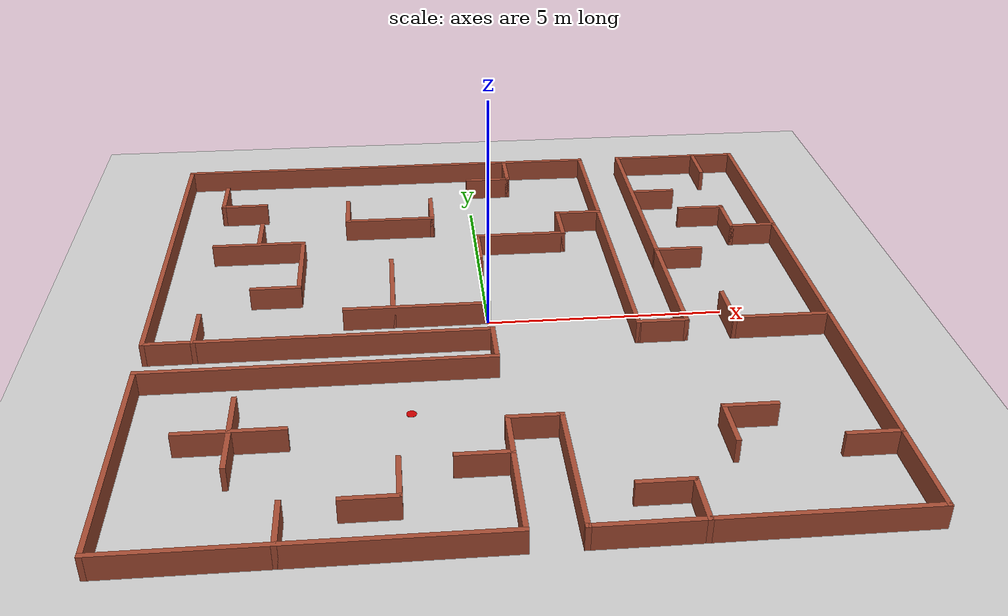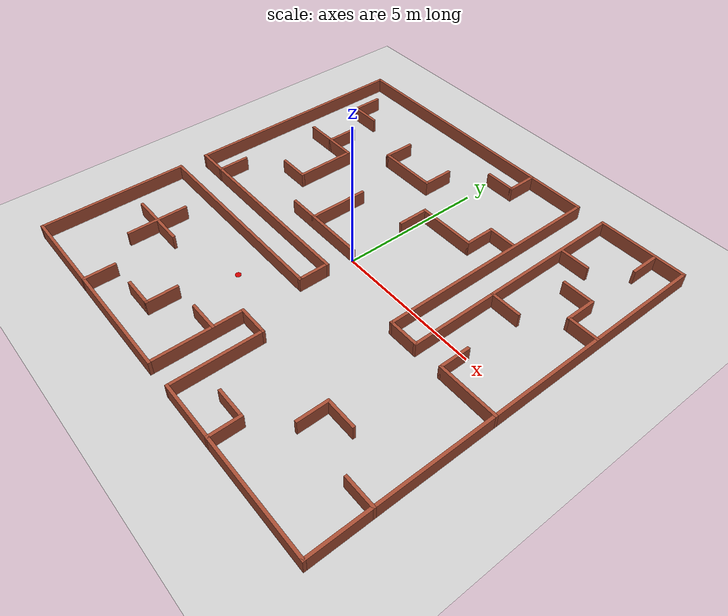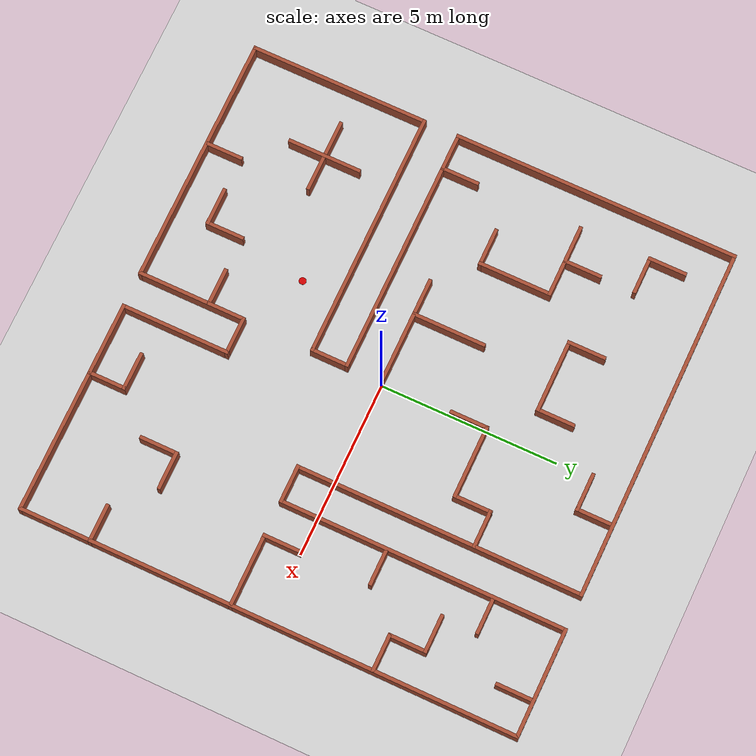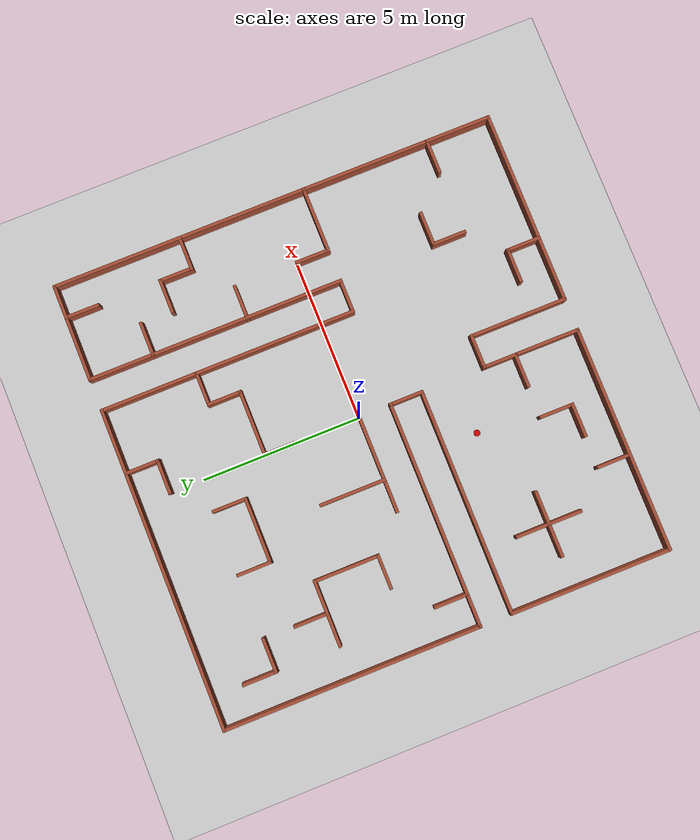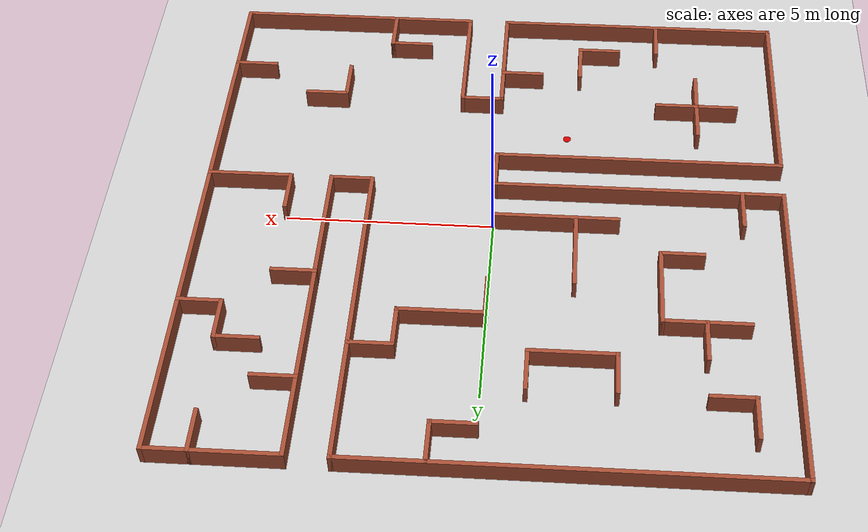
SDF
<sdf version="1.7">
 <world name="default">
  <light name="sun" type="directional">
   <pose>0 0 10 0 -0 0</pose>
   <diffuse>0.8 0.8 0.8 1</diffuse>
   <specular>0.2 0.2 0.2 1</specular>
   <attenuation>
    <range>1000</range>
    <constant>0.9</constant>
    <linear>0.01</linear>
    <quadratic>0.001</quadratic>
   </attenuation>
   <direction>-0.5 0.1 -0.9</direction>
   <spot><inner_angle>0</inner_angle><outer_angle>0</outer_angle><falloff>0</falloff></spot>
  </light>
  <model name="ground_plane">
   <static>1</static>
   <link name="link">
    <collision name="collision">
     <geometry><plane><normal>0 0 1</normal><size>100 100</size></plane></geometry>
     <surface>
      <contact><collide_bitmask>65535</collide_bitmask></contact>
      <friction><ode><mu>100</mu><mu2>50</mu2></ode></friction>
     </surface>
    </collision>
    <visual name="visual">
     <cast_shadows>0</cast_shadows>
     <geometry><plane><normal>0 0 1</normal><size>100 100</size></plane></geometry>
     <material>
      <script><uri>file://media/materials/scripts/gazebo.material</uri><name>Gazebo/Grey</name></script>
     </material>
    </visual>
   </link>
  </model>
  <gravity>0 0 -9.8</gravity>
  <magnetic_field>6e-06 2.3e-05 -4.2e-05</magnetic_field>
  <atmosphere type="adiabatic"/>
  <physics type="ode">
   <max_step_size>0.001</max_step_size>
   <real_time_factor>1</real_time_factor>
   <real_time_update_rate>1000</real_time_update_rate>
  </physics>
  <scene><ambient>0.4 0.4 0.4 1</ambient><background>0.7 0.7 0.7 1</background><shadows>1</shadows></scene>
  <spherical_coordinates>
   <surface_model>EARTH_WGS84</surface_model>
   <latitude_deg>0</latitude_deg>
   <longitude_deg>0</longitude_deg>
   <elevation>0</elevation>
   <heading_deg>0</heading_deg>
  </spherical_coordinates>
  <model name="sin_cpx_0">
   <link name="Wall_0">
    <collision name="Wall_0_Collision">
     <geometry><box><size>10.1 0.1 0.5</size></box></geometry>
     <pose>0 0 0.25 0 -0 0</pose>
    </collision>
    <visual name="Wall_0_Visual">
     <pose>0 0 0.25 0 -0 0</pose>
     <geometry><box><size>10.1 0.1 0.5</size></box></geometry>
     <material>
      <script><uri>file://media/materials/scripts/gazebo.material</uri><name>Gazebo/Bricks</name></script>
      <ambient>0.760784 0.662745 0.627451 1</ambient>
     </material>
     <meta><layer>0</layer></meta>
    </visual>
    <pose>-2 7 0 0 -0 0</pose>
   </link>
   <link name="Wall_1">
    <collision name="Wall_1_Collision">
     <geometry><box><size>8.1 0.1 0.5</size></box></geometry>
     <pose>0 0 0.25 0 -0 0</pose>
    </collision>
    <visual name="Wall_1_Visual">
     <pose>0 0 0.25 0 -0 0</pose>
     <geometry><box><size>8.1 0.1 0.5</size></box></geometry>
     <material>
      <script><uri>file://media/materials/scripts/gazebo.material</uri><name>Gazebo/Bricks</name></script>
      <ambient>0.760784 0.662745 0.627451 1</ambient>
     </material>
     <meta><layer>0</layer></meta>
    </visual>
    <pose>3 3 0 0 -0 -1.5708</pose>
   </link>
   <link name="Wall_10">
    <collision name="Wall_10_Collision">
     <geometry><box><size>7.1 0.1 0.5</size></box></geometry>
     <pose>0 0 0.25 0 -0 0</pose>
    </collision>
    <visual name="Wall_10_Visual">
     <pose>0 0 0.25 0 -0 0</pose>
     <geometry><box><size>7.1 0.1 0.5</size></box></geometry>
     <material>
      <script><uri>file://media/materials/scripts/gazebo.material</uri><name>Gazebo/Bricks</name></script>
      <ambient>0.760784 0.662745 0.627451 1</ambient>
     </material>
     <meta><layer>0</layer></meta>
    </visual>
    <pose>-3.5 -7 0 0 -0 3.14159</pose>
   </link>
   <link name="Wall_11">
    <collision name="Wall_11_Collision">
     <geometry><box><size>5.1 0.1 0.5</size></box></geometry>
     <pose>0 0 0.25 0 -0 0</pose>
    </collision>
    <visual name="Wall_11_Visual">
     <pose>0 0 0.25 0 -0 0</pose>
     <geometry><box><size>5.1 0.1 0.5</size></box></geometry>
     <material>
      <script><uri>file://media/materials/scripts/gazebo.material</uri><name>Gazebo/Bricks</name></script>
      <ambient>0.760784 0.662745 0.627451 1</ambient>
     </material>
     <meta><layer>0</layer></meta>
    </visual>
    <pose>-7 -4.5 0 0 -0 1.5708</pose>
   </link>
   <link name="Wall_12">
    <collision name="Wall_12_Collision">
     <geometry><box><size>7.1 0.1 0.5</size></box></geometry>
     <pose>0 0 0.25 0 -0 0</pose>
    </collision>
    <visual name="Wall_12_Visual">
     <pose>0 0 0.25 0 -0 0</pose>
     <geometry><box><size>7.1 0.1 0.5</size></box></geometry>
     <material>
      <script><uri>file://media/materials/scripts/gazebo.material</uri><name>Gazebo/Bricks</name></script>
      <ambient>0.760784 0.662745 0.627451 1</ambient>
     </material>
     <meta><layer>0</layer></meta>
    </visual>
    <pose>-3.5 -2 0 0 -0 0</pose>
   </link>
   <link name="Wall_13">
    <collision name="Wall_13_Collision">
     <geometry><box><size>1.1 0.1 0.5</size></box></geometry>
     <pose>0 0 0.25 0 -0 0</pose>
    </collision>
    <visual name="Wall_13_Visual">
     <pose>0 0 0.25 0 -0 0</pose>
     <geometry><box><size>1.1 0.1 0.5</size></box></geometry>
     <material>
      <script><uri>file://media/materials/scripts/gazebo.material</uri><name>Gazebo/Bricks</name></script>
      <ambient>0.760784 0.662745 0.627451 1</ambient>
     </material>
     <meta><layer>0</layer></meta>
    </visual>
    <pose>0 -1.5 0 0 -0 1.5708</pose>
   </link>
   <link name="Wall_14">
    <collision name="Wall_14_Collision">
     <geometry><box><size>7.1 0.1 0.5</size></box></geometry>
     <pose>0 0 0.25 0 -0 0</pose>
    </collision>
    <visual name="Wall_14_Visual">
     <pose>0 0 0.25 0 -0 0</pose>
     <geometry><box><size>7.1 0.1 0.5</size></box></geometry>
     <material>
      <script><uri>file://media/materials/scripts/gazebo.material</uri><name>Gazebo/Bricks</name></script>
      <ambient>0.760784 0.662745 0.627451 1</ambient>
     </material>
     <meta><layer>0</layer></meta>
    </visual>
    <pose>-3.5 -1 0 0 -0 3.14159</pose>
   </link>
   <link name="Wall_15">
    <collision name="Wall_15_Collision">
     <geometry><box><size>8.1 0.1 0.5</size></box></geometry>
     <pose>0 0 0.25 0 -0 0</pose>
    </collision>
    <visual name="Wall_15_Visual">
     <pose>0 0 0.25 0 -0 0</pose>
     <geometry><box><size>8.1 0.1 0.5</size></box></geometry>
     <material>
      <script><uri>file://media/materials/scripts/gazebo.material</uri><name>Gazebo/Bricks</name></script>
      <ambient>0.760784 0.662745 0.627451 1</ambient>
     </material>
     <meta><layer>0</layer></meta>
    </visual>
    <pose>-7 3 0 0 -0 1.5708</pose>
   </link>
   <link name="Wall_17">
    <collision name="Wall_17_Collision">
     <geometry><box><size>1.1 0.1 0.5</size></box></geometry>
     <pose>0 0 0.25 0 -0 0</pose>
    </collision>
    <visual name="Wall_17_Visual">
     <pose>0 0 0.25 0 -0 0</pose>
     <geometry><box><size>1.1 0.1 0.5</size></box></geometry>
     <material>
      <script><uri>file://media/materials/scripts/gazebo.material</uri><name>Gazebo/Bricks</name></script>
      <ambient>0.760784 0.662745 0.627451 1</ambient>
     </material>
     <meta><layer>0</layer></meta>
    </visual>
    <pose>-4 -6.5 0 0 -0 1.5708</pose>
   </link>
   <link name="Wall_19">
    <collision name="Wall_19_Collision">
     <geometry><box><size>2.1 0.1 0.5</size></box></geometry>
     <pose>0 0 0.25 0 -0 0</pose>
    </collision>
    <visual name="Wall_19_Visual">
     <pose>0 0 0.25 0 -0 0</pose>
     <geometry><box><size>2.1 0.1 0.5</size></box></geometry>
     <material>
      <script><uri>file://media/materials/scripts/gazebo.material</uri><name>Gazebo/Bricks</name></script>
      <ambient>0.760784 0.662745 0.627451 1</ambient>
     </material>
     <meta><layer>0</layer></meta>
    </visual>
    <pose>-5 -4 0 0 -0 0</pose>
   </link>
   <link name="Wall_2">
    <collision name="Wall_2_Collision">
     <geometry><box><size>1.1 0.1 0.5</size></box></geometry>
     <pose>0 0 0.25 0 -0 0</pose>
    </collision>
    <visual name="Wall_2_Visual">
     <pose>0 0 0.25 0 -0 0</pose>
     <geometry><box><size>1.1 0.1 0.5</size></box></geometry>
     <material>
      <script><uri>file://media/materials/scripts/gazebo.material</uri><name>Gazebo/Bricks</name></script>
      <ambient>0.760784 0.662745 0.627451 1</ambient>
     </material>
     <meta><layer>0</layer></meta>
    </visual>
    <pose>3.5 -1 0 0 -0 0</pose>
   </link>
   <link name="Wall_21">
    <collision name="Wall_21_Collision">
     <geometry><box><size>2.1 0.1 0.5</size></box></geometry>
     <pose>0 0 0.25 0 -0 0</pose>
    </collision>
    <visual name="Wall_21_Visual">
     <pose>0 0 0.25 0 -0 0</pose>
     <geometry><box><size>2.1 0.1 0.5</size></box></geometry>
     <material>
      <script><uri>file://media/materials/scripts/gazebo.material</uri><name>Gazebo/Bricks</name></script>
      <ambient>0.760784 0.662745 0.627451 1</ambient>
     </material>
     <meta><layer>0</layer></meta>
    </visual>
    <pose>-5 -4 0 0 -0 -1.5708</pose>
   </link>
   <link name="Wall_23">
    <collision name="Wall_23_Collision">
     <geometry><box><size>1.1 0.1 0.5</size></box></geometry>
     <pose>0 0 0.25 0 -0 0</pose>
    </collision>
    <visual name="Wall_23_Visual">
     <pose>0 0 0.25 0 -0 0</pose>
     <geometry><box><size>1.1 0.1 0.5</size></box></geometry>
     <material>
      <script><uri>file://media/materials/scripts/gazebo.material</uri><name>Gazebo/Bricks</name></script>
      <ambient>0.760784 0.662745 0.627451 1</ambient>
     </material>
     <meta><layer>0</layer></meta>
    </visual>
    <pose>-2.5 -6 0 0 -0 0</pose>
   </link>
   <link name="Wall_24">
    <collision name="Wall_24_Collision">
     <geometry><box><size>1.1 0.1 0.5</size></box></geometry>
     <pose>0 0 0.25 0 -0 0</pose>
    </collision>
    <visual name="Wall_24_Visual">
     <pose>0 0 0.25 0 -0 0</pose>
     <geometry><box><size>1.1 0.1 0.5</size></box></geometry>
     <material>
      <script><uri>file://media/materials/scripts/gazebo.material</uri><name>Gazebo/Bricks</name></script>
      <ambient>0.760784 0.662745 0.627451 1</ambient>
     </material>
     <meta><layer>0</layer></meta>
    </visual>
    <pose>-2 -5.5 0 0 -0 1.5708</pose>
   </link>
   <link name="Wall_26">
    <collision name="Wall_26_Collision">
     <geometry><box><size>1.1 0.1 0.5</size></box></geometry>
     <pose>0 0 0.25 0 -0 0</pose>
    </collision>
    <visual name="Wall_26_Visual">
     <pose>0 0 0.25 0 -0 0</pose>
     <geometry><box><size>1.1 0.1 0.5</size></box></geometry>
     <material>
      <script><uri>file://media/materials/scripts/gazebo.material</uri><name>Gazebo/Bricks</name></script>
      <ambient>0.760784 0.662745 0.627451 1</ambient>
     </material>
     <meta><layer>0</layer></meta>
    </visual>
    <pose>2.5 -6 0 0 -0 0</pose>
   </link>
   <link name="Wall_27">
    <collision name="Wall_27_Collision">
     <geometry><box><size>1.1 0.1 0.5</size></box></geometry>
     <pose>0 0 0.25 0 -0 0</pose>
    </collision>
    <visual name="Wall_27_Visual">
     <pose>0 0 0.25 0 -0 0</pose>
     <geometry><box><size>1.1 0.1 0.5</size></box></geometry>
     <material>
      <script><uri>file://media/materials/scripts/gazebo.material</uri><name>Gazebo/Bricks</name></script>
      <ambient>0.760784 0.662745 0.627451 1</ambient>
     </material>
     <meta><layer>0</layer></meta>
    </visual>
    <pose>3 -6.5 0 0 -0 -1.5708</pose>
   </link>
   <link name="Wall_3">
    <collision name="Wall_3_Collision">
     <geometry><box><size>8.1 0.1 0.5</size></box></geometry>
     <pose>0 0 0.25 0 -0 0</pose>
    </collision>
    <visual name="Wall_3_Visual">
     <pose>0 0 0.25 0 -0 0</pose>
     <geometry><box><size>8.1 0.1 0.5</size></box></geometry>
     <material>
      <script><uri>file://media/materials/scripts/gazebo.material</uri><name>Gazebo/Bricks</name></script>
      <ambient>0.760784 0.662745 0.627451 1</ambient>
     </material>
     <meta><layer>0</layer></meta>
    </visual>
    <pose>4 3 0 0 -0 1.5708</pose>
   </link>
   <link name="Wall_30">
    <collision name="Wall_30_Collision">
     <geometry><box><size>1.1 0.1 0.5</size></box></geometry>
     <pose>0 0 0.25 0 -0 0</pose>
    </collision>
    <visual name="Wall_30_Visual">
     <pose>0 0 0.25 0 -0 0</pose>
     <geometry><box><size>1.1 0.1 0.5</size></box></geometry>
     <material>
      <script><uri>file://media/materials/scripts/gazebo.material</uri><name>Gazebo/Bricks</name></script>
      <ambient>0.760784 0.662745 0.627451 1</ambient>
     </material>
     <meta><layer>0</layer></meta>
    </visual>
    <pose>4 -4.5 0 0 -0 1.5708</pose>
   </link>
   <link name="Wall_31">
    <collision name="Wall_31_Collision">
     <geometry><box><size>1.1 0.1 0.5</size></box></geometry>
     <pose>0 0 0.25 0 -0 0</pose>
    </collision>
    <visual name="Wall_31_Visual">
     <pose>0 0 0.25 0 -0 0</pose>
     <geometry><box><size>1.1 0.1 0.5</size></box></geometry>
     <material>
      <script><uri>file://media/materials/scripts/gazebo.material</uri><name>Gazebo/Bricks</name></script>
      <ambient>0.760784 0.662745 0.627451 1</ambient>
     </material>
     <meta><layer>0</layer></meta>
    </visual>
    <pose>4.5 -4 0 0 -0 0</pose>
   </link>
   <link name="Wall_33">
    <collision name="Wall_33_Collision">
     <geometry><box><size>1.1 0.1 0.5</size></box></geometry>
     <pose>0 0 0.25 0 -0 0</pose>
    </collision>
    <visual name="Wall_33_Visual">
     <pose>0 0 0.25 0 -0 0</pose>
     <geometry><box><size>1.1 0.1 0.5</size></box></geometry>
     <material>
      <script><uri>file://media/materials/scripts/gazebo.material</uri><name>Gazebo/Bricks</name></script>
      <ambient>0.760784 0.662745 0.627451 1</ambient>
     </material>
     <meta><layer>0</layer></meta>
    </visual>
    <pose>6.5 -5 0 0 -0 0</pose>
   </link>
   <link name="Wall_35">
    <collision name="Wall_35_Collision">
     <geometry><box><size>1.1 0.1 0.5</size></box></geometry>
     <pose>0 0 0.25 0 -0 0</pose>
    </collision>
    <visual name="Wall_35_Visual">
     <pose>0 0 0.25 0 -0 0</pose>
     <geometry><box><size>1.1 0.1 0.5</size></box></geometry>
     <material>
      <script><uri>file://media/materials/scripts/gazebo.material</uri><name>Gazebo/Bricks</name></script>
      <ambient>0.760784 0.662745 0.627451 1</ambient>
     </material>
     <meta><layer>0</layer></meta>
    </visual>
    <pose>5 -0.5 0 0 -0 -1.5708</pose>
   </link>
   <link name="Wall_36">
    <collision name="Wall_36_Collision">
     <geometry><box><size>2.1 0.1 0.5</size></box></geometry>
     <pose>0 0 0.25 0 -0 0</pose>
    </collision>
    <visual name="Wall_36_Visual">
     <pose>0 0 0.25 0 -0 0</pose>
     <geometry><box><size>2.1 0.1 0.5</size></box></geometry>
     <material>
      <script><uri>file://media/materials/scripts/gazebo.material</uri><name>Gazebo/Bricks</name></script>
      <ambient>0.760784 0.662745 0.627451 1</ambient>
     </material>
     <meta><layer>0</layer></meta>
    </visual>
    <pose>6 -1 0 0 -0 0</pose>
   </link>
   <link name="Wall_38">
    <collision name="Wall_38_Collision">
     <geometry><box><size>1.1 0.1 0.5</size></box></geometry>
     <pose>0 0 0.25 0 -0 0</pose>
    </collision>
    <visual name="Wall_38_Visual">
     <pose>0 0 0.25 0 -0 0</pose>
     <geometry><box><size>1.1 0.1 0.5</size></box></geometry>
     <material>
      <script><uri>file://media/materials/scripts/gazebo.material</uri><name>Gazebo/Bricks</name></script>
      <ambient>0.760784 0.662745 0.627451 1</ambient>
     </material>
     <meta><layer>0</layer></meta>
    </visual>
    <pose>4.5 2 0 0 -0 0</pose>
   </link>
   <link name="Wall_4">
    <collision name="Wall_4_Collision">
     <geometry><box><size>3.1 0.1 0.5</size></box></geometry>
     <pose>0 0 0.25 0 -0 0</pose>
    </collision>
    <visual name="Wall_4_Visual">
     <pose>0 0 0.25 0 -0 0</pose>
     <geometry><box><size>3.1 0.1 0.5</size></box></geometry>
     <material>
      <script><uri>file://media/materials/scripts/gazebo.material</uri><name>Gazebo/Bricks</name></script>
      <ambient>0.760784 0.662745 0.627451 1</ambient>
     </material>
     <meta><layer>0</layer></meta>
    </visual>
    <pose>5.5 7 0 0 -0 0</pose>
   </link>
   <link name="Wall_40">
    <collision name="Wall_40_Collision">
     <geometry><box><size>1.1 0.1 0.5</size></box></geometry>
     <pose>0 0 0.25 0 -0 0</pose>
    </collision>
    <visual name="Wall_40_Visual">
     <pose>0 0 0.25 0 -0 0</pose>
     <geometry><box><size>1.1 0.1 0.5</size></box></geometry>
     <material>
      <script><uri>file://media/materials/scripts/gazebo.material</uri><name>Gazebo/Bricks</name></script>
      <ambient>0.760784 0.662745 0.627451 1</ambient>
     </material>
     <meta><layer>0</layer></meta>
    </visual>
    <pose>4.5 5 0 0 -0 0</pose>
   </link>
   <link name="Wall_42">
    <collision name="Wall_42_Collision">
     <geometry><box><size>1.1 0.1 0.5</size></box></geometry>
     <pose>0 0 0.25 0 -0 0</pose>
    </collision>
    <visual name="Wall_42_Visual">
     <pose>0 0 0.25 0 -0 0</pose>
     <geometry><box><size>1.1 0.1 0.5</size></box></geometry>
     <material>
      <script><uri>file://media/materials/scripts/gazebo.material</uri><name>Gazebo/Bricks</name></script>
      <ambient>0.760784 0.662745 0.627451 1</ambient>
     </material>
     <meta><layer>0</layer></meta>
    </visual>
    <pose>6 6.5 0 0 -0 -1.5708</pose>
   </link>
   <link name="Wall_44">
    <collision name="Wall_44_Collision">
     <geometry><box><size>1.1 0.1 0.5</size></box></geometry>
     <pose>0 0 0.25 0 -0 0</pose>
    </collision>
    <visual name="Wall_44_Visual">
     <pose>0 0 0.25 0 -0 0</pose>
     <geometry><box><size>1.1 0.1 0.5</size></box></geometry>
     <material>
      <script><uri>file://media/materials/scripts/gazebo.material</uri><name>Gazebo/Bricks</name></script>
      <ambient>0.760784 0.662745 0.627451 1</ambient>
     </material>
     <meta><layer>0</layer></meta>
    </visual>
    <pose>5.5 4 0 0 -0 0</pose>
   </link>
   <link name="Wall_45">
    <collision name="Wall_45_Collision">
     <geometry><box><size>1.1 0.1 0.5</size></box></geometry>
     <pose>0 0 0.25 0 -0 0</pose>
    </collision>
    <visual name="Wall_45_Visual">
     <pose>0 0 0.25 0 -0 0</pose>
     <geometry><box><size>1.1 0.1 0.5</size></box></geometry>
     <material>
      <script><uri>file://media/materials/scripts/gazebo.material</uri><name>Gazebo/Bricks</name></script>
      <ambient>0.760784 0.662745 0.627451 1</ambient>
     </material>
     <meta><layer>0</layer></meta>
    </visual>
    <pose>6 3.5 0 0 -0 -1.5708</pose>
   </link>
   <link name="Wall_46">
    <collision name="Wall_46_Collision">
     <geometry><box><size>1.1 0.1 0.5</size></box></geometry>
     <pose>0 0 0.25 0 -0 0</pose>
    </collision>
    <visual name="Wall_46_Visual">
     <pose>0 0 0.25 0 -0 0</pose>
     <geometry><box><size>1.1 0.1 0.5</size></box></geometry>
     <material>
      <script><uri>file://media/materials/scripts/gazebo.material</uri><name>Gazebo/Bricks</name></script>
      <ambient>0.760784 0.662745 0.627451 1</ambient>
     </material>
     <meta><layer>0</layer></meta>
    </visual>
    <pose>6.5 3 0 0 -0 0</pose>
   </link>
   <link name="Wall_48">
    <collision name="Wall_48_Collision">
     <geometry><box><size>1.1 0.1 0.5</size></box></geometry>
     <pose>0 0 0.25 0 -0 0</pose>
    </collision>
    <visual name="Wall_48_Visual">
     <pose>0 0 0.25 0 -0 0</pose>
     <geometry><box><size>1.1 0.1 0.5</size></box></geometry>
     <material>
      <script><uri>file://media/materials/scripts/gazebo.material</uri><name>Gazebo/Bricks</name></script>
      <ambient>0.760784 0.662745 0.627451 1</ambient>
     </material>
     <meta><layer>0</layer></meta>
    </visual>
    <pose>0 2.5 0 0 -0 1.5708</pose>
   </link>
   <link name="Wall_49">
    <collision name="Wall_49_Collision">
     <geometry><box><size>2.1 0.1 0.5</size></box></geometry>
     <pose>0 0 0.25 0 -0 0</pose>
    </collision>
    <visual name="Wall_49_Visual">
     <pose>0 0 0.25 0 -0 0</pose>
     <geometry><box><size>2.1 0.1 0.5</size></box></geometry>
     <material>
      <script><uri>file://media/materials/scripts/gazebo.material</uri><name>Gazebo/Bricks</name></script>
      <ambient>0.760784 0.662745 0.627451 1</ambient>
     </material>
     <meta><layer>0</layer></meta>
    </visual>
    <pose>1 3 0 0 -0 0</pose>
   </link>
   <link name="Wall_5">
    <collision name="Wall_5_Collision">
     <geometry><box><size>14.1 0.1 0.5</size></box></geometry>
     <pose>0 0 0.25 0 -0 0</pose>
    </collision>
    <visual name="Wall_5_Visual">
     <pose>0 0 0.25 0 -0 0</pose>
     <geometry><box><size>14.1 0.1 0.5</size></box></geometry>
     <material>
      <script><uri>file://media/materials/scripts/gazebo.material</uri><name>Gazebo/Bricks</name></script>
      <ambient>0.760784 0.662745 0.627451 1</ambient>
     </material>
     <meta><layer>0</layer></meta>
    </visual>
    <pose>7 0 0 0 -0 -1.5708</pose>
   </link>
   <link name="Wall_50">
    <collision name="Wall_50_Collision">
     <geometry><box><size>1.1 0.1 0.5</size></box></geometry>
     <pose>0 0 0.25 0 -0 0</pose>
    </collision>
    <visual name="Wall_50_Visual">
     <pose>0 0 0.25 0 -0 0</pose>
     <geometry><box><size>1.1 0.1 0.5</size></box></geometry>
     <material>
      <script><uri>file://media/materials/scripts/gazebo.material</uri><name>Gazebo/Bricks</name></script>
      <ambient>0.760784 0.662745 0.627451 1</ambient>
     </material>
     <meta><layer>0</layer></meta>
    </visual>
    <pose>2 3.5 0 0 -0 1.5708</pose>
   </link>
   <link name="Wall_51">
    <collision name="Wall_51_Collision">
     <geometry><box><size>1.1 0.1 0.5</size></box></geometry>
     <pose>0 0 0.25 0 -0 0</pose>
    </collision>
    <visual name="Wall_51_Visual">
     <pose>0 0 0.25 0 -0 0</pose>
     <geometry><box><size>1.1 0.1 0.5</size></box></geometry>
     <material>
      <script><uri>file://media/materials/scripts/gazebo.material</uri><name>Gazebo/Bricks</name></script>
      <ambient>0.760784 0.662745 0.627451 1</ambient>
     </material>
     <meta><layer>0</layer></meta>
    </visual>
    <pose>2.5 4 0 0 -0 0</pose>
   </link>
   <link name="Wall_53">
    <collision name="Wall_53_Collision">
     <geometry><box><size>1.1 0.1 0.5</size></box></geometry>
     <pose>0 0 0.25 0 -0 0</pose>
    </collision>
    <visual name="Wall_53_Visual">
     <pose>0 0 0.25 0 -0 0</pose>
     <geometry><box><size>1.1 0.1 0.5</size></box></geometry>
     <material>
      <script><uri>file://media/materials/scripts/gazebo.material</uri><name>Gazebo/Bricks</name></script>
      <ambient>0.760784 0.662745 0.627451 1</ambient>
     </material>
     <meta><layer>0</layer></meta>
    </visual>
    <pose>-6 -0.5 0 0 -0 -1.5708</pose>
   </link>
   <link name="Wall_6">
    <collision name="Wall_6_Collision">
     <geometry><box><size>6.1 0.1 0.5</size></box></geometry>
     <pose>0 0 0.25 0 -0 0</pose>
    </collision>
    <visual name="Wall_6_Visual">
     <pose>0 0 0.25 0 -0 0</pose>
     <geometry><box><size>6.1 0.1 0.5</size></box></geometry>
     <material>
      <script><uri>file://media/materials/scripts/gazebo.material</uri><name>Gazebo/Bricks</name></script>
      <ambient>0.760784 0.662745 0.627451 1</ambient>
     </material>
     <meta><layer>0</layer></meta>
    </visual>
    <pose>4 -7 0 0 -0 3.14159</pose>
   </link>
   <link name="Wall_62">
    <collision name="Wall_62_Collision">
     <geometry><box><size>1.1 0.1 0.5</size></box></geometry>
     <pose>0 0 0.25 0 -0 0</pose>
    </collision>
    <visual name="Wall_62_Visual">
     <pose>0 0 0.25 0 -0 0</pose>
     <geometry><box><size>1.1 0.1 0.5</size></box></geometry>
     <material>
      <script><uri>file://media/materials/scripts/gazebo.material</uri><name>Gazebo/Bricks</name></script>
      <ambient>0.760784 0.662745 0.627451 1</ambient>
     </material>
     <meta><layer>0</layer></meta>
    </visual>
    <pose>1 6.5 0 0 -0 1.5708</pose>
   </link>
   <link name="Wall_64">
    <collision name="Wall_64_Collision">
     <geometry><box><size>1.1 0.1 0.5</size></box></geometry>
     <pose>0 0 0.25 0 -0 0</pose>
    </collision>
    <visual name="Wall_64_Visual">
     <pose>0 0 0.25 0 -0 0</pose>
     <geometry><box><size>1.1 0.1 0.5</size></box></geometry>
     <material>
      <script><uri>file://media/materials/scripts/gazebo.material</uri><name>Gazebo/Bricks</name></script>
      <ambient>0.760784 0.662745 0.627451 1</ambient>
     </material>
     <meta><layer>0</layer></meta>
    </visual>
    <pose>-3 4.5 0 0 -0 -1.5708</pose>
   </link>
   <link name="Wall_65">
    <collision name="Wall_65_Collision">
     <geometry><box><size>2.1 0.1 0.5</size></box></geometry>
     <pose>0 0 0.25 0 -0 0</pose>
    </collision>
    <visual name="Wall_65_Visual">
     <pose>0 0 0.25 0 -0 0</pose>
     <geometry><box><size>2.1 0.1 0.5</size></box></geometry>
     <material>
      <script><uri>file://media/materials/scripts/gazebo.material</uri><name>Gazebo/Bricks</name></script>
      <ambient>0.760784 0.662745 0.627451 1</ambient>
     </material>
     <meta><layer>0</layer></meta>
    </visual>
    <pose>-2 4 0 0 -0 0</pose>
   </link>
   <link name="Wall_66">
    <collision name="Wall_66_Collision">
     <geometry><box><size>1.1 0.1 0.5</size></box></geometry>
     <pose>0 0 0.25 0 -0 0</pose>
    </collision>
    <visual name="Wall_66_Visual">
     <pose>0 0 0.25 0 -0 0</pose>
     <geometry><box><size>1.1 0.1 0.5</size></box></geometry>
     <material>
      <script><uri>file://media/materials/scripts/gazebo.material</uri><name>Gazebo/Bricks</name></script>
      <ambient>0.760784 0.662745 0.627451 1</ambient>
     </material>
     <meta><layer>0</layer></meta>
    </visual>
    <pose>-1 4.5 0 0 -0 1.5708</pose>
   </link>
   <link name="Wall_68">
    <collision name="Wall_68_Collision">
     <geometry><box><size>1.1 0.1 0.5</size></box></geometry>
     <pose>0 0 0.25 0 -0 0</pose>
    </collision>
    <visual name="Wall_68_Visual">
     <pose>0 0 0.25 0 -0 0</pose>
     <geometry><box><size>1.1 0.1 0.5</size></box></geometry>
     <material>
      <script><uri>file://media/materials/scripts/gazebo.material</uri><name>Gazebo/Bricks</name></script>
      <ambient>0.760784 0.662745 0.627451 1</ambient>
     </material>
     <meta><layer>0</layer></meta>
    </visual>
    <pose>-5 3.5 0 0 -0 -1.5708</pose>
   </link>
   <link name="Wall_7">
    <collision name="Wall_7_Collision">
     <geometry><box><size>3.1 0.1 0.5</size></box></geometry>
     <pose>0 0 0.25 0 -0 0</pose>
    </collision>
    <visual name="Wall_7_Visual">
     <pose>0 0 0.25 0 -0 0</pose>
     <geometry><box><size>3.1 0.1 0.5</size></box></geometry>
     <material>
      <script><uri>file://media/materials/scripts/gazebo.material</uri><name>Gazebo/Bricks</name></script>
      <ambient>0.760784 0.662745 0.627451 1</ambient>
     </material>
     <meta><layer>0</layer></meta>
    </visual>
    <pose>1 -5.5 0 0 -0 1.5708</pose>
   </link>
   <link name="Wall_70">
    <collision name="Wall_70_Collision">
     <geometry><box><size>2.1 0.1 0.5</size></box></geometry>
     <pose>0 0 0.25 0 -0 0</pose>
    </collision>
    <visual name="Wall_70_Visual">
     <pose>0 0 0.25 0 -0 0</pose>
     <geometry><box><size>2.1 0.1 0.5</size></box></geometry>
     <material>
      <script><uri>file://media/materials/scripts/gazebo.material</uri><name>Gazebo/Bricks</name></script>
      <ambient>0.760784 0.662745 0.627451 1</ambient>
     </material>
     <meta><layer>0</layer></meta>
    </visual>
    <pose>-5 3 0 0 -0 0</pose>
   </link>
   <link name="Wall_71">
    <collision name="Wall_71_Collision">
     <geometry><box><size>2.1 0.1 0.5</size></box></geometry>
     <pose>0 0 0.25 0 -0 0</pose>
    </collision>
    <visual name="Wall_71_Visual">
     <pose>0 0 0.25 0 -0 0</pose>
     <geometry><box><size>2.1 0.1 0.5</size></box></geometry>
     <material>
      <script><uri>file://media/materials/scripts/gazebo.material</uri><name>Gazebo/Bricks</name></script>
      <ambient>0.760784 0.662745 0.627451 1</ambient>
     </material>
     <meta><layer>0</layer></meta>
    </visual>
    <pose>-4 2 0 0 -0 -1.5708</pose>
   </link>
   <link name="Wall_72">
    <collision name="Wall_72_Collision">
     <geometry><box><size>1.1 0.1 0.5</size></box></geometry>
     <pose>0 0 0.25 0 -0 0</pose>
    </collision>
    <visual name="Wall_72_Visual">
     <pose>0 0 0.25 0 -0 0</pose>
     <geometry><box><size>1.1 0.1 0.5</size></box></geometry>
     <material>
      <script><uri>file://media/materials/scripts/gazebo.material</uri><name>Gazebo/Bricks</name></script>
      <ambient>0.760784 0.662745 0.627451 1</ambient>
     </material>
     <meta><layer>0</layer></meta>
    </visual>
    <pose>-4.5 1 0 0 -0 3.14159</pose>
   </link>
   <link name="Wall_75">
    <collision name="Wall_75_Collision">
     <geometry><box><size>2.1 0.1 0.5</size></box></geometry>
     <pose>0 0 0.25 0 -0 0</pose>
    </collision>
    <visual name="Wall_75_Visual">
     <pose>0 0 0.25 0 -0 0</pose>
     <geometry><box><size>2.1 0.1 0.5</size></box></geometry>
     <material>
      <script><uri>file://media/materials/scripts/gazebo.material</uri><name>Gazebo/Bricks</name></script>
      <ambient>0.760784 0.662745 0.627451 1</ambient>
     </material>
     <meta><layer>0</layer></meta>
    </visual>
    <pose>-2 1 0 0 -0 1.5708</pose>
   </link>
   <link name="Wall_8">
    <collision name="Wall_8_Collision">
     <geometry><box><size>1.1 0.1 0.5</size></box></geometry>
     <pose>0 0 0.25 0 -0 0</pose>
    </collision>
    <visual name="Wall_8_Visual">
     <pose>0 0 0.25 0 -0 0</pose>
     <geometry><box><size>1.1 0.1 0.5</size></box></geometry>
     <material>
      <script><uri>file://media/materials/scripts/gazebo.material</uri><name>Gazebo/Bricks</name></script>
      <ambient>0.760784 0.662745 0.627451 1</ambient>
     </material>
     <meta><layer>0</layer></meta>
    </visual>
    <pose>0.5 -4 0 0 -0 3.14159</pose>
   </link>
   <link name="Wall_80">
    <collision name="Wall_80_Collision">
     <geometry><box><size>1.1 0.1 0.5</size></box></geometry>
     <pose>0 0 0.25 0 -0 0</pose>
    </collision>
    <visual name="Wall_80_Visual">
     <pose>0 0 0.25 0 -0 0</pose>
     <geometry><box><size>1.1 0.1 0.5</size></box></geometry>
     <material>
      <script><uri>file://media/materials/scripts/gazebo.material</uri><name>Gazebo/Bricks</name></script>
      <ambient>0.760784 0.662745 0.627451 1</ambient>
     </material>
     <meta><layer>0</layer></meta>
    </visual>
    <pose>-0.5 -5 0 0 -0 0</pose>
   </link>
   <link name="Wall_84">
    <collision name="Wall_84_Collision">
     <geometry><box><size>1.1 0.1 0.5</size></box></geometry>
     <pose>0 0 0.25 0 -0 0</pose>
    </collision>
    <visual name="Wall_84_Visual">
     <pose>0 0 0.25 0 -0 0</pose>
     <geometry><box><size>1.1 0.1 0.5</size></box></geometry>
     <material>
      <script><uri>file://media/materials/scripts/gazebo.material</uri><name>Gazebo/Bricks</name></script>
      <ambient>0.760784 0.662745 0.627451 1</ambient>
     </material>
     <meta><layer>0</layer></meta>
    </visual>
    <pose>-6 5.5 0 0 -0 -1.5708</pose>
   </link>
   <link name="Wall_85">
    <collision name="Wall_85_Collision">
     <geometry><box><size>1.1 0.1 0.5</size></box></geometry>
     <pose>0 0 0.25 0 -0 0</pose>
    </collision>
    <visual name="Wall_85_Visual">
     <pose>0 0 0.25 0 -0 0</pose>
     <geometry><box><size>1.1 0.1 0.5</size></box></geometry>
     <material>
      <script><uri>file://media/materials/scripts/gazebo.material</uri><name>Gazebo/Bricks</name></script>
      <ambient>0.760784 0.662745 0.627451 1</ambient>
     </material>
     <meta><layer>0</layer></meta>
    </visual>
    <pose>-5.5 5 0 0 -0 0</pose>
   </link>
   <link name="Wall_88">
    <collision name="Wall_88_Collision">
     <geometry><box><size>1.1 0.1 0.5</size></box></geometry>
     <pose>0 0 0.25 0 -0 0</pose>
    </collision>
    <visual name="Wall_88_Visual">
     <pose>0 0 0.25 0 -0 0</pose>
     <geometry><box><size>1.1 0.1 0.5</size></box></geometry>
     <material>
      <script><uri>file://media/materials/scripts/gazebo.material</uri><name>Gazebo/Bricks</name></script>
      <ambient>0.760784 0.662745 0.627451 1</ambient>
     </material>
     <meta><layer>0</layer></meta>
    </visual>
    <pose>0.5 6 0 0 -0 3.14159</pose>
   </link>
   <link name="Wall_9">
    <collision name="Wall_9_Collision">
     <geometry><box><size>3.1 0.1 0.5</size></box></geometry>
     <pose>0 0 0.25 0 -0 0</pose>
    </collision>
    <visual name="Wall_9_Visual">
     <pose>0 0 0.25 0 -0 0</pose>
     <geometry><box><size>3.1 0.1 0.5</size></box></geometry>
     <material>
      <script><uri>file://media/materials/scripts/gazebo.material</uri><name>Gazebo/Bricks</name></script>
      <ambient>0.760784 0.662745 0.627451 1</ambient>
     </material>
     <meta><layer>0</layer></meta>
    </visual>
    <pose>0 -5.5 0 0 -0 -1.5708</pose>
   </link>
   <link name="Wall_91">
    <collision name="Wall_91_Collision">
     <geometry><box><size>3.1 0.1 0.5</size></box></geometry>
     <pose>0 0 0.25 0 -0 0</pose>
    </collision>
    <visual name="Wall_91_Visual">
     <pose>0 0 0.25 0 -0 0</pose>
     <geometry><box><size>3.1 0.1 0.5</size></box></geometry>
     <material>
      <script><uri>file://media/materials/scripts/gazebo.material</uri><name>Gazebo/Bricks</name></script>
      <ambient>0.760784 0.662745 0.627451 1</ambient>
     </material>
     <meta><layer>0</layer></meta>
    </visual>
    <pose>-1.5 0 0 0 -0 0</pose>
   </link>
   <static>1</static>
  </model>
  <model name="target_red">
   <link name="link">
    <inertial>
     <mass>1</mass>
     <inertia><ixx>0.145833</ixx><ixy>0</ixy><ixz>0</ixz><iyy>0.145833</iyy><iyz>0</iyz><izz>0.125</izz></inertia>
    </inertial>
    <visual name="visual">
     <geometry><cylinder><radius>0.1</radius><length>0.01</length></cylinder></geometry>
     <material>
      <script><name>Gazebo/Grey</name><uri>file://media/materials/scripts/gazebo.material</uri></script>
      <shader type="pixel"><normal_map>__default__</normal_map></shader>
      <ambient>0.8 0 0 1</ambient>
      <diffuse>0.8 0 0 1</diffuse>
      <specular>0.8 0 0 1</specular>
      <emissive>0 0 0 1</emissive>
     </material>
    </visual>
    <collision name="collision">
     <geometry><cylinder><radius>0.1</radius><length>0.01</length></cylinder></geometry>
     <surface>
      <friction>
       <ode><mu>1</mu><mu2>1</mu2><fdir1>0 0 0</fdir1><slip1>0</slip1><slip2>0</slip2></ode>
       <torsional>
        <coefficient>1</coefficient>
        <patch_radius>0</patch_radius>
        <surface_radius>0</surface_radius>
        <use_patch_radius>1</use_patch_radius>
        <ode><slip>0</slip></ode>
       </torsional>
      </friction>
      <bounce><restitution_coefficient>0</restitution_coefficient><threshold>1e+06</threshold></bounce>
      <contact>
       <collide_without_contact>0</collide_without_contact>
       <collide_without_contact_bitmask>1</collide_without_contact_bitmask>
       <collide_bitmask>1</collide_bitmask>
       <ode>
        <soft_cfm>0</soft_cfm>
        <soft_erp>0.2</soft_erp>
        <kp>1e+13</kp>
        <kd>1</kd>
        <max_vel>0.01</max_vel>
        <min_depth>0</min_depth>
       </ode>
       <bullet>
        <split_impulse>1</split_impulse>
        <split_impulse_penetration_threshold>-0.01</split_impulse_penetration_threshold>
        <soft_cfm>0</soft_cfm>
        <soft_erp>0.2</soft_erp>
        <kp>1e+13</kp>
        <kd>1</kd>
       </bullet>
      </contact>
     </surface>
    </collision>
   </link>
   <static>0</static>
   <pose>-1.72493 -3.10952 0.004991 0 -0 0</pose>
  </model>
 </world>
</sdf>
